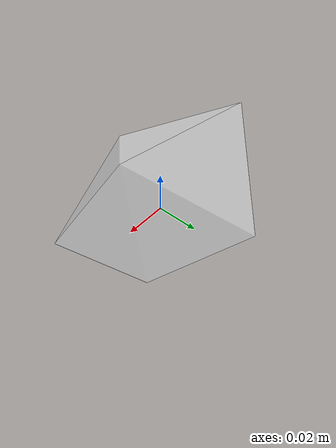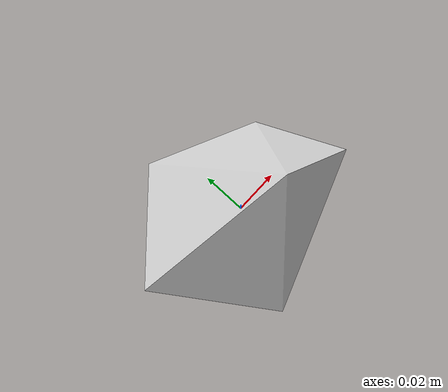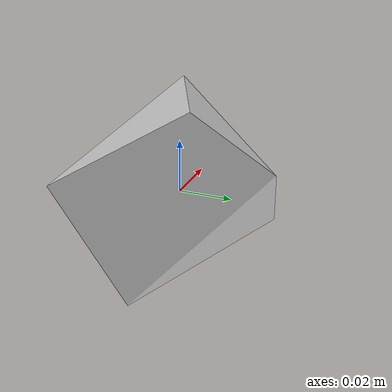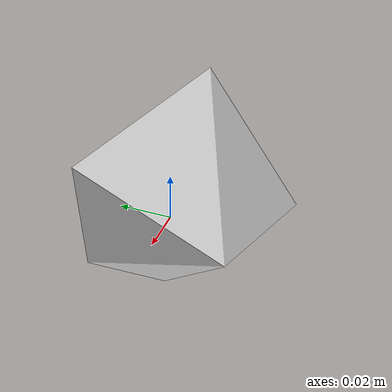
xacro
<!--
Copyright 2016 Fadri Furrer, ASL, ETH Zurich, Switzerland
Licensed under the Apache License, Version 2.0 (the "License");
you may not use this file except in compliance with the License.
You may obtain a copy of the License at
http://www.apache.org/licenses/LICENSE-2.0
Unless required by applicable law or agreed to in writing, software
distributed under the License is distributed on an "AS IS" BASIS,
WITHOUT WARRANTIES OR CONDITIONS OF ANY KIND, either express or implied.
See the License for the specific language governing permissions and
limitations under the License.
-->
<?xml version="1.0"?>

<robot name="3_poly" xmlns:xacro="http://ros.org/wiki/xacro">
  <xacro:property name="mesh_file" value="package://urdf_models/models/polygons/3_poly.stl" />
  <xacro:property name="mass" value="1.0" />
  <link name="base_link"></link>

  <joint name="base_joint" type="fixed">
    <origin xyz="0 0 0" rpy="0 0 0" />
    <parent link="base_link" />
    <child link="base_link_inertia" />
  </joint>
  <link name="base_link_inertia">
      <inertial>
        <mass value="${mass}" />  <!-- [kg] -->
        <origin xyz="-0.042501e-01 -0.0018606e-01  0.0043009e-01" />
        <inertia ixx="0.005698e-02" ixy="0.0" 		ixz="0.0"
                			    iyy="0.007699e-02"  iyz="0.0"
                 								izz="0.008392e-02" />
      </inertial>

      <visual>
        <origin xyz="0 0 0" rpy="0 0 0" />
        <geometry>
          <mesh filename="${mesh_file}" scale="1 1 1" />
        </geometry>
	<material name="Gray">
	  <color rgba="0.8 0.8 0.8 1"/>
	</material>
      </visual>

      <collision>
        <origin xyz="0 0 0" rpy="0 0 0" />
        <geometry>
          <mesh filename="${mesh_file}" scale="1 1 1" />
        </geometry>
      </collision>
    </link>

    <gazebo reference="base_link">
      <mu1 value="1.2"/>
      <mu2 value="1.1"/>
      <kp  value="5000000.0" />
      <kd  value="1.0" />
      <fdir1 value="1 0 0"/>
      <collision>
	        <surface>
	          <bounce>
	            <restitution_coefficient> 0.1 </restitution_coefficient>
	            <threshold>0.</threshold>
	          </bounce>
		      <contact>
		          <ode>
		            <max_vel>0.1</max_vel>
		            <min_depth>0.001</min_depth>
		          </ode>
		      </contact>
	        </surface>
	   </collision>
      <material name="Gray">
	    <color rgba="0.8 0.8 0.8 1"/>
	  </material>
      <turnGravityOff>false</turnGravityOff>
    </gazebo>

</robot>
